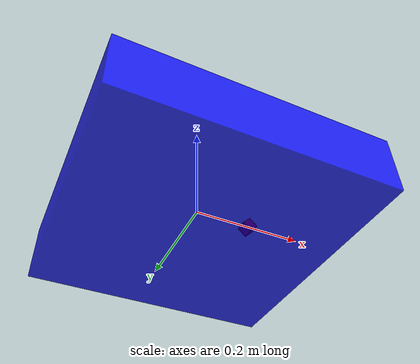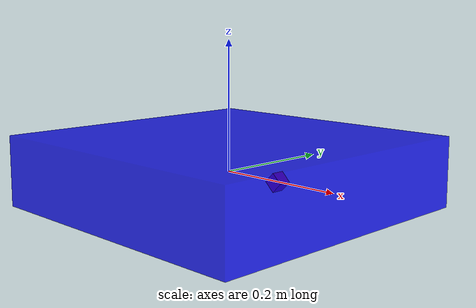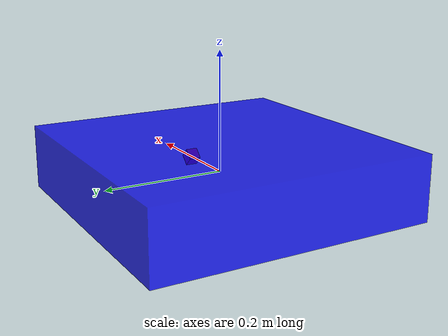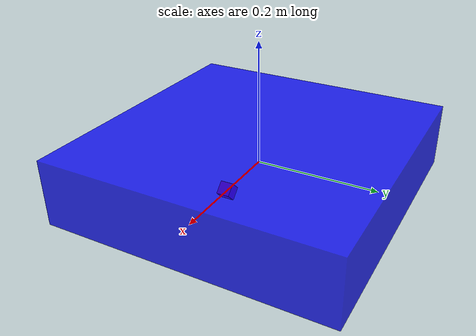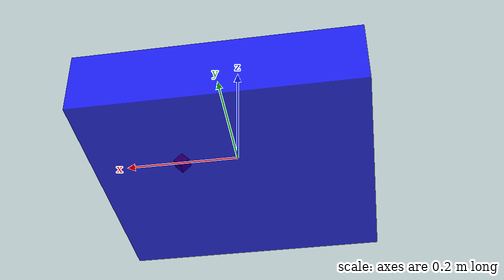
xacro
<?xml version="1.0"?>
<robot xmlns:xacro="http://www.ros.org/wiki/xacro" name="iris">

  <!-- 机器人基础参数 -->
  <xacro:property name="mass" value="1.5"/>
  <xacro:property name="width" value="0.47"/>
  <xacro:property name="length" value="0.47"/>
  <xacro:property name="height" value="0.11"/>

  <!-- 无人机主体 -->
  <link name="base_link">
    <visual>
      <geometry>
        <box size="${width} ${length} ${height}"/>
      </geometry>
      <material name="blue">
        <color rgba="0 0 1 0.8"/>
      </material>
    </visual>
    <collision>
      <geometry>
        <box size="${width} ${length} ${height}"/>
      </geometry>
    </collision>
    <inertial>
      <mass value="${mass}"/>
      <inertia
        ixx="${mass * (width * width + height * height) / 12.0}"
        ixy="0" ixz="0"
        iyy="${mass * (length * length + height * height) / 12.0}"
        iyz="0"
        izz="${mass * (width * width + length * length) / 12.0}"/>
    </inertial>
  </link>

  <!-- 相机链接 -->
  <link name="camera_link">
    <visual>
      <geometry>
        <box size="0.02 0.02 0.02"/>
      </geometry>
      <material name="red">
        <color rgba="1 0 0 1"/>
      </material>
    </visual>
    <collision>
      <geometry>
        <box size="0.02 0.02 0.02"/>
      </geometry>
    </collision>
    <inertial>
      <mass value="0.1"/>
      <inertia ixx="0.001" ixy="0" ixz="0" iyy="0.001" iyz="0" izz="0.001"/>
    </inertial>
  </link>

  <!-- 相机关节 -->
  <joint name="camera_joint" type="fixed">
    <parent link="base_link"/>
    <child link="camera_link"/>
    <origin xyz="0.1 0 0" rpy="0 0.785 0"/>  <!-- 45度朝下 -->
  </joint>

  <!-- Gazebo相机插件 -->
  <gazebo reference="camera_link">
    <sensor type="camera" name="camera">
      <update_rate>30.0</update_rate>
      <camera name="head">
        <horizontal_fov>1.047</horizontal_fov>
        <image>
          <width>640</width>
          <height>480</height>
          <format>R8G8B8</format>
        </image>
        <clip>
          <near>0.1</near>
          <far>100</far>
        </clip>
      </camera>
      <plugin name="camera_controller" filename="libgazebo_ros_camera.so">
        <alwaysOn>true</alwaysOn>
        <updateRate>0.0</updateRate>
        <cameraName>iris</cameraName>
        <imageTopicName>camera/image_raw</imageTopicName>
        <cameraInfoTopicName>camera/camera_info</cameraInfoTopicName>
        <frameName>camera_link</frameName>
        <hackBaseline>0.07</hackBaseline>
        <distortionK1>0.0</distortionK1>
        <distortionK2>0.0</distortionK2>
        <distortionK3>0.0</distortionK3>
        <distortionT1>0.0</distortionT1>
        <distortionT2>0.0</distortionT2>
      </plugin>
    </sensor>
  </gazebo>

  <!-- Gazebo颜色材质 -->
  <gazebo reference="base_link">
    <material>Gazebo/Blue</material>
  </gazebo>

  <gazebo reference="camera_link">
    <material>Gazebo/Red</material>
  </gazebo>

</robot>
